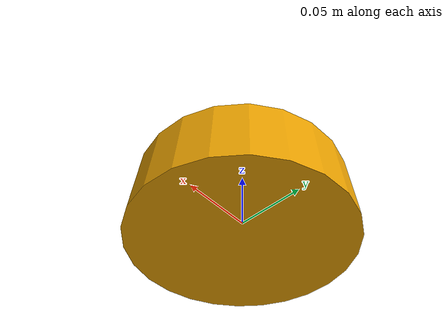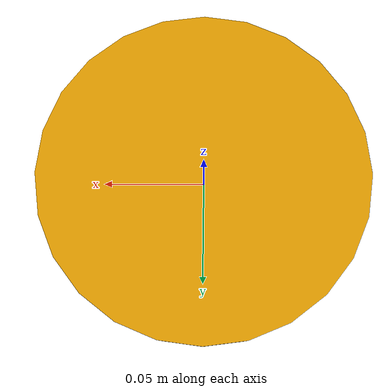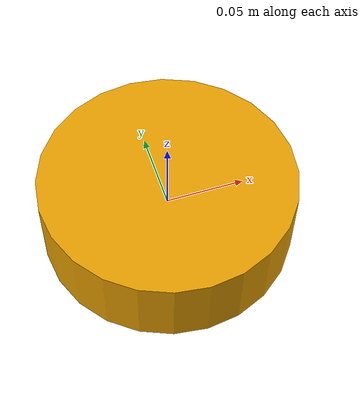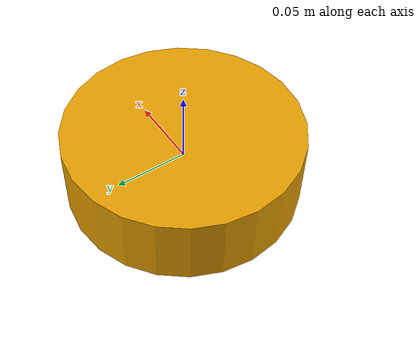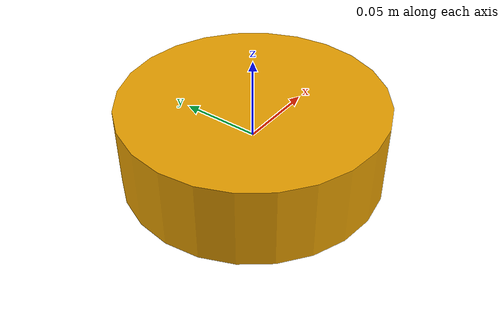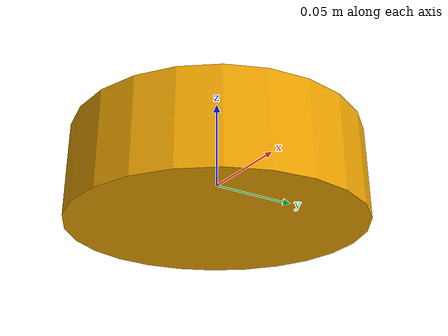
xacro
<?xml version="1.0"?>
<robot name="ak80_8" xmlns:xacro="http://www.ros.org/wiki/xacro">
  <!-- Include ros2 control tags -->
  <xacro:include filename="$(find levion_arm_ros2_control)/ros2_control/leptrino_force_torque.ros2_control.xacro"/>

  <!-- Main URDF -->
  <link name="tool_link">
    <visual>
      <origin xyz="0 0 0" rpy="0 0 0"/>
      <geometry>
        <cylinder radius=".08" length="0.05"/>
      </geometry>
    </visual>
    <collision>
      <origin xyz="0 0 0" rpy="0 0 0"/>
      <geometry>
        <cylinder radius=".08" length="0.05"/>
      </geometry>
    </collision>
    <inertial>
      <origin xyz="0 0 0" rpy="0 0 0"/>
      <mass value="0.1"/>
      <inertia ixx="0.0001" ixy="0.0" ixz="0.0" iyy="0.0001" iyz="0.0" izz="0.0001"/>
    </inertial>
  </link>
</robot>
